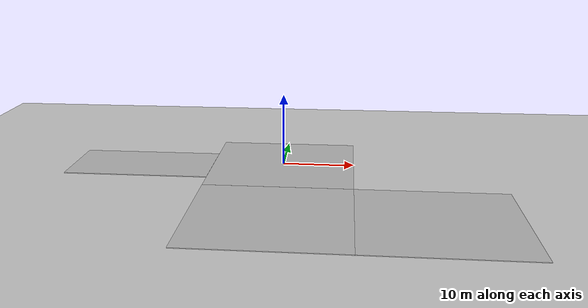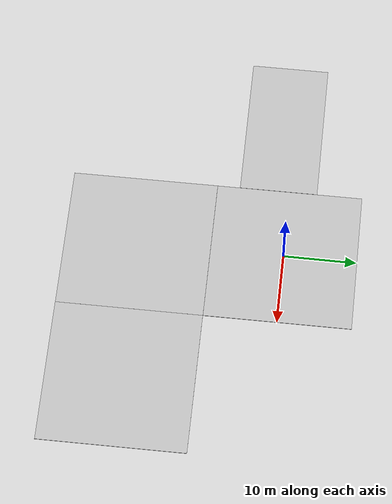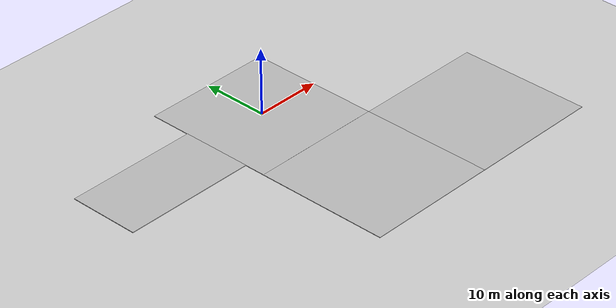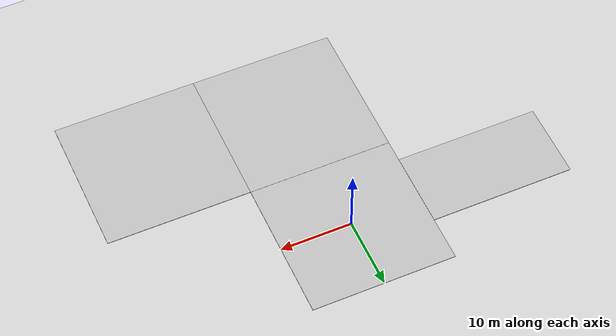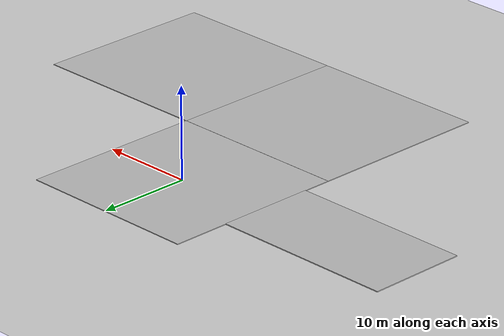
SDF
<sdf version="1.7">
 <world name="default">
  <light name="sun" type="directional">
   <pose>0 0 10 0 -0 0</pose>
   <diffuse>0.8 0.8 0.8 1</diffuse>
   <specular>0.2 0.2 0.2 1</specular>
   <attenuation>
    <range>1000</range>
    <constant>0.9</constant>
    <linear>0.01</linear>
    <quadratic>0.001</quadratic>
   </attenuation>
   <direction>-0.5 0.1 -0.9</direction>
   <spot><inner_angle>0</inner_angle><outer_angle>0</outer_angle><falloff>0</falloff></spot>
  </light>
  <model name="ground_plane">
   <static>1</static>
   <link name="link">
    <collision name="collision">
     <geometry><plane><normal>0 0 1</normal><size>100 100</size></plane></geometry>
     <surface>
      <contact><collide_bitmask>65535</collide_bitmask></contact>
      <friction><ode><mu>100</mu><mu2>50</mu2></ode></friction>
     </surface>
    </collision>
    <visual name="visual">
     <cast_shadows>0</cast_shadows>
     <geometry><plane><normal>0 0 1</normal><size>100 100</size></plane></geometry>
     <material>
      <script><uri>file://media/materials/scripts/gazebo.material</uri><name>Gazebo/Grey</name></script>
     </material>
    </visual>
   </link>
  </model>
  <gravity>0 0 -9.8</gravity>
  <magnetic_field>6e-06 2.3e-05 -4.2e-05</magnetic_field>
  <atmosphere type="adiabatic"/>
  <physics type="ode">
   <max_step_size>0.001</max_step_size>
   <real_time_factor>1</real_time_factor>
   <real_time_update_rate>1000</real_time_update_rate>
  </physics>
  <scene><ambient>0.4 0.4 0.4 1</ambient><background>0.7 0.7 0.7 1</background><shadows>1</shadows></scene>
  <spherical_coordinates>
   <surface_model>EARTH_WGS84</surface_model>
   <latitude_deg>0</latitude_deg>
   <longitude_deg>0</longitude_deg>
   <elevation>0</elevation>
   <heading_deg>0</heading_deg>
  </spherical_coordinates>
  <model name="basedGrass">
   <static>1</static>
   <link name="link">
    <collision name="collision"><geometry><box><size>20 20 0.1</size></box></geometry></collision>
    <visual name="visual">
     <cast_shadows>0</cast_shadows>
     <geometry><box><size>20 20 0.1</size></box></geometry>
     <material>
      <script>
       <uri>model://basedGrass/materials/scripts</uri>
       <uri>model://basedGrass/materials/textures</uri>
       <name>basedGrass/Diffuse</name>
      </script>
     </material>
    </visual>
   </link>
   <pose>-0.030953 0.034388 -0.036736 0 -0 0</pose>
  </model>
  <model name="sand">
   <static>1</static>
   <link name="link">
    <collision name="collision"><geometry><box><size>20 20 0.1</size></box></geometry></collision>
    <visual name="visual">
     <cast_shadows>0</cast_shadows>
     <geometry><box><size>20 20 0.1</size></box></geometry>
     <material>
      <script>
       <uri>model://sand/materials/scripts</uri>
       <uri>model://sand/materials/textures</uri>
       <name>sand/Diffuse</name>
      </script>
     </material>
    </visual>
   </link>
   <pose>-0.038511 -19.973 -0.036736 0 -0 0</pose>
  </model>
  <model name="basedGrass_0">
   <static>1</static>
   <link name="link">
    <collision name="collision"><geometry><box><size>20 20 0.1</size></box></geometry></collision>
    <visual name="visual">
     <cast_shadows>0</cast_shadows>
     <geometry><box><size>20 20 0.1</size></box></geometry>
     <material>
      <script>
       <uri>model://ocean/materials/scripts</uri>
       <uri>model://ocean/materials/textures</uri>
       <name>ocean/Diffuse</name>
      </script>
     </material>
    </visual>
   </link>
   <pose>19.9498 -19.9832 -0.037206 0 -0 0</pose>
  </model>
  <model name="residential_road">
   <static>1</static>
   <link name="link">
    <collision name="collision"><geometry><box><size>20 10.66 0.1</size></box></geometry></collision>
    <visual name="visual">
     <cast_shadows>0</cast_shadows>
     <geometry><box><size>20 10.66 0.1</size></box></geometry>
     <material>
      <script>
       <uri>model://residential_road/materials/scripts</uri>
       <uri>model://residential_road/materials/textures</uri>
       <name>ResidentialRoad/Diffuse</name>
      </script>
     </material>
    </visual>
   </link>
   <pose>-20.031 -1.52228 -0.003403 0 -0 0</pose>
  </model>
 </world>
</sdf>
